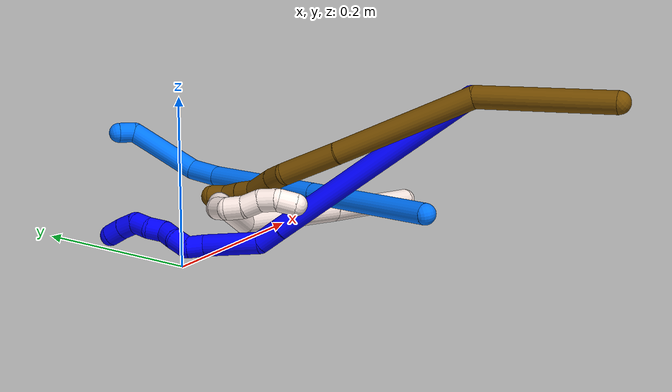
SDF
<sdf version="1.7">
 <world name="default">
  <model name="1">
   <static>0</static>
   <link name="1">
    <collision name="collision-cylinder-e_1_1_4">
     <pose>-0.068429 0.007891 -0.111738 -3.07109 -0.548385 2.89214</pose>
     <geometry><cylinder><radius>0.0125</radius><length>0.262528</length></cylinder></geometry>
     <surface>
      <friction><ode><mu>1.16</mu><mu2>1.16</mu2><slip1>0</slip1><slip2>0</slip2></ode></friction>
      <contact><ode><kp>1e+06</kp><kd>1</kd><max_vel>0</max_vel><min_depth>0.001</min_depth></ode></contact>
     </surface>
    </collision>
    <visual name="visual-cylinder-e_1_1_4">
     <pose>-0.068429 0.007891 -0.111738 -3.07109 -0.548385 2.89214</pose>
     <geometry><cylinder><radius>0.0125</radius><length>0.262528</length></cylinder></geometry>
     <material><ambient>0 0 1 1</ambient></material>
    </visual>
    <collision name="collision-cylinder-e_2_4_5">
     <pose>-0.143253 0.016708 -0.235962 -3.06757 -0.472267 2.83623</pose>
     <geometry><cylinder><radius>0.0125</radius><length>0.028117</length></cylinder></geometry>
     <surface>
      <friction><ode><mu>1.16</mu><mu2>1.16</mu2><slip1>0</slip1><slip2>0</slip2></ode></friction>
      <contact><ode><kp>1e+06</kp><kd>1</kd><max_vel>0</max_vel><min_depth>0.001</min_depth></ode></contact>
     </surface>
    </collision>
    <visual name="visual-cylinder-e_2_4_5">
     <pose>-0.143253 0.016708 -0.235962 -3.06757 -0.472267 2.83623</pose>
     <geometry><cylinder><radius>0.0125</radius><length>0.028117</length></cylinder></geometry>
     <material><ambient>0 0 1 1</ambient></material>
    </visual>
    <collision name="collision-cylinder-e_3_5_6">
     <pose>-0.16231 0.036611 -0.273787 -2.49877 -0.380443 1.04863</pose>
     <geometry><cylinder><radius>0.0125</radius><length>0.068192</length></cylinder></geometry>
     <surface>
      <friction><ode><mu>1.16</mu><mu2>1.16</mu2><slip1>0</slip1><slip2>0</slip2></ode></friction>
      <contact><ode><kp>1e+06</kp><kd>1</kd><max_vel>0</max_vel><min_depth>0.001</min_depth></ode></contact>
     </surface>
    </collision>
    <visual name="visual-cylinder-e_3_5_6">
     <pose>-0.16231 0.036611 -0.273787 -2.49877 -0.380443 1.04863</pose>
     <geometry><cylinder><radius>0.0125</radius><length>0.068192</length></cylinder></geometry>
     <material><ambient>0 0 1 1</ambient></material>
    </visual>
    <collision name="collision-cylinder-e_4_6_7">
     <pose>-0.181521 0.060637 -0.305167 -2.44547 -0.69398 1.56745</pose>
     <geometry><cylinder><radius>0.0125</radius><length>0.020483</length></cylinder></geometry>
     <surface>
      <friction><ode><mu>1.16</mu><mu2>1.16</mu2><slip1>0</slip1><slip2>0</slip2></ode></friction>
      <contact><ode><kp>1e+06</kp><kd>1</kd><max_vel>0</max_vel><min_depth>0.001</min_depth></ode></contact>
     </surface>
    </collision>
    <visual name="visual-cylinder-e_4_6_7">
     <pose>-0.181521 0.060637 -0.305167 -2.44547 -0.69398 1.56745</pose>
     <geometry><cylinder><radius>0.0125</radius><length>0.020483</length></cylinder></geometry>
     <material><ambient>0 0 1 1</ambient></material>
    </visual>
    <collision name="collision-cylinder-e_5_7_8">
     <pose>-0.188179 0.074741 -0.315918 -2.05045 -0.010497 0.017292</pose>
     <geometry><cylinder><radius>0.0125</radius><length>0.020416</length></cylinder></geometry>
     <surface>
      <friction><ode><mu>1.16</mu><mu2>1.16</mu2><slip1>0</slip1><slip2>0</slip2></ode></friction>
      <contact><ode><kp>1e+06</kp><kd>1</kd><max_vel>0</max_vel><min_depth>0.001</min_depth></ode></contact>
     </surface>
    </collision>
    <visual name="visual-cylinder-e_5_7_8">
     <pose>-0.188179 0.074741 -0.315918 -2.05045 -0.010497 0.017292</pose>
     <geometry><cylinder><radius>0.0125</radius><length>0.020416</length></cylinder></geometry>
     <material><ambient>0 0 1 1</ambient></material>
    </visual>
    <collision name="collision-cylinder-e_6_8_9">
     <pose>-0.185958 0.091647 -0.326541 -2.21625 0.232559 -0.46008</pose>
     <geometry><cylinder><radius>0.0125</radius><length>0.0202</length></cylinder></geometry>
     <surface>
      <friction><ode><mu>1.16</mu><mu2>1.16</mu2><slip1>0</slip1><slip2>0</slip2></ode></friction>
      <contact><ode><kp>1e+06</kp><kd>1</kd><max_vel>0</max_vel><min_depth>0.001</min_depth></ode></contact>
     </surface>
    </collision>
    <visual name="visual-cylinder-e_6_8_9">
     <pose>-0.185958 0.091647 -0.326541 -2.21625 0.232559 -0.46008</pose>
     <geometry><cylinder><radius>0.0125</radius><length>0.0202</length></cylinder></geometry>
     <material><ambient>0 0 1 1</ambient></material>
    </visual>
    <collision name="collision-cylinder-e_7_9_10">
     <pose>-0.18765 0.107025 -0.337726 -2.18189 -0.412294 0.764156</pose>
     <geometry><cylinder><radius>0.0125</radius><length>0.020062</length></cylinder></geometry>
     <surface>
      <friction><ode><mu>1.16</mu><mu2>1.16</mu2><slip1>0</slip1><slip2>0</slip2></ode></friction>
      <contact><ode><kp>1e+06</kp><kd>1</kd><max_vel>0</max_vel><min_depth>0.001</min_depth></ode></contact>
     </surface>
    </collision>
    <visual name="visual-cylinder-e_7_9_10">
     <pose>-0.18765 0.107025 -0.337726 -2.18189 -0.412294 0.764156</pose>
     <geometry><cylinder><radius>0.0125</radius><length>0.020062</length></cylinder></geometry>
     <material><ambient>0 0 1 1</ambient></material>
    </visual>
    <collision name="collision-cylinder-e_8_10_11">
     <pose>-0.192232 0.122405 -0.349167 -2.23659 -0.056268 0.115645</pose>
     <geometry><cylinder><radius>0.0125</radius><length>0.020002</length></cylinder></geometry>
     <surface>
      <friction><ode><mu>1.16</mu><mu2>1.16</mu2><slip1>0</slip1><slip2>0</slip2></ode></friction>
      <contact><ode><kp>1e+06</kp><kd>1</kd><max_vel>0</max_vel><min_depth>0.001</min_depth></ode></contact>
     </surface>
    </collision>
    <visual name="visual-cylinder-e_8_10_11">
     <pose>-0.192232 0.122405 -0.349167 -2.23659 -0.056268 0.115645</pose>
     <geometry><cylinder><radius>0.0125</radius><length>0.020002</length></cylinder></geometry>
     <material><ambient>0 0 1 1</ambient></material>
    </visual>
    <collision name="collision-cylinder-e_9_11_12">
     <pose>-0.19549 0.133111 -0.364532 -2.84078 -0.272904 1.47224</pose>
     <geometry><cylinder><radius>0.0125</radius><length>0.02</length></cylinder></geometry>
     <surface>
      <friction><ode><mu>1.16</mu><mu2>1.16</mu2><slip1>0</slip1><slip2>0</slip2></ode></friction>
      <contact><ode><kp>1e+06</kp><kd>1</kd><max_vel>0</max_vel><min_depth>0.001</min_depth></ode></contact>
     </surface>
    </collision>
    <visual name="visual-cylinder-e_9_11_12">
     <pose>-0.19549 0.133111 -0.364532 -2.84078 -0.272904 1.47224</pose>
     <geometry><cylinder><radius>0.0125</radius><length>0.02</length></cylinder></geometry>
     <material><ambient>0 0 1 1</ambient></material>
    </visual>
    <collision name="collision-cylinder-e_10_12_2">
     <pose>-0.201109 0.137843 -0.383107 -2.9439 -0.296672 1.96979</pose>
     <geometry><cylinder><radius>0.0125</radius><length>0.02</length></cylinder></geometry>
     <surface>
      <friction><ode><mu>1.16</mu><mu2>1.16</mu2><slip1>0</slip1><slip2>0</slip2></ode></friction>
      <contact><ode><kp>1e+06</kp><kd>1</kd><max_vel>0</max_vel><min_depth>0.001</min_depth></ode></contact>
     </surface>
    </collision>
    <visual name="visual-cylinder-e_10_12_2">
     <pose>-0.201109 0.137843 -0.383107 -2.9439 -0.296672 1.96979</pose>
     <geometry><cylinder><radius>0.0125</radius><length>0.02</length></cylinder></geometry>
     <material><ambient>0 0 1 1</ambient></material>
    </visual>
    <collision name="collision-sphere-2">
     <pose>-0.204032 0.139721 -0.392484 0 -0 0</pose>
     <geometry><sphere><radius>0.0125</radius></sphere></geometry>
     <surface>
      <friction><ode><mu>1.16</mu><mu2>1.16</mu2><slip1>0</slip1><slip2>0</slip2></ode></friction>
      <contact><ode><kp>1e+06</kp><kd>1</kd><max_vel>0</max_vel><min_depth>0.001</min_depth></ode></contact>
     </surface>
    </collision>
    <visual name="visual-sphere-2">
     <pose>-0.204032 0.139721 -0.392484 0 -0 0</pose>
     <geometry><sphere><radius>0.0125</radius></sphere></geometry>
     <material><ambient>0 0 1 1</ambient></material>
    </visual>
    <collision name="collision-sphere-12">
     <pose>-0.198185 0.135964 -0.37373 0 -0 0</pose>
     <geometry><sphere><radius>0.0125</radius></sphere></geometry>
     <surface>
      <friction><ode><mu>1.16</mu><mu2>1.16</mu2><slip1>0</slip1><slip2>0</slip2></ode></friction>
      <contact><ode><kp>1e+06</kp><kd>1</kd><max_vel>0</max_vel><min_depth>0.001</min_depth></ode></contact>
     </surface>
    </collision>
    <visual name="visual-sphere-12">
     <pose>-0.198185 0.135964 -0.37373 0 -0 0</pose>
     <geometry><sphere><radius>0.0125</radius></sphere></geometry>
     <material><ambient>0 0 1 1</ambient></material>
    </visual>
    <collision name="collision-sphere-11">
     <pose>-0.192794 0.130258 -0.355335 0 -0 0</pose>
     <geometry><sphere><radius>0.0125</radius></sphere></geometry>
     <surface>
      <friction><ode><mu>1.16</mu><mu2>1.16</mu2><slip1>0</slip1><slip2>0</slip2></ode></friction>
      <contact><ode><kp>1e+06</kp><kd>1</kd><max_vel>0</max_vel><min_depth>0.001</min_depth></ode></contact>
     </surface>
    </collision>
    <visual name="visual-sphere-11">
     <pose>-0.192794 0.130258 -0.355335 0 -0 0</pose>
     <geometry><sphere><radius>0.0125</radius></sphere></geometry>
     <material><ambient>0 0 1 1</ambient></material>
    </visual>
    <collision name="collision-sphere-10">
     <pose>-0.19167 0.114552 -0.342999 0 -0 0</pose>
     <geometry><sphere><radius>0.0125</radius></sphere></geometry>
     <surface>
      <friction><ode><mu>1.16</mu><mu2>1.16</mu2><slip1>0</slip1><slip2>0</slip2></ode></friction>
      <contact><ode><kp>1e+06</kp><kd>1</kd><max_vel>0</max_vel><min_depth>0.001</min_depth></ode></contact>
     </surface>
    </collision>
    <visual name="visual-sphere-10">
     <pose>-0.19167 0.114552 -0.342999 0 -0 0</pose>
     <geometry><sphere><radius>0.0125</radius></sphere></geometry>
     <material><ambient>0 0 1 1</ambient></material>
    </visual>
    <collision name="collision-sphere-9">
     <pose>-0.183631 0.099498 -0.332453 0 -0 0</pose>
     <geometry><sphere><radius>0.0125</radius></sphere></geometry>
     <surface>
      <friction><ode><mu>1.16</mu><mu2>1.16</mu2><slip1>0</slip1><slip2>0</slip2></ode></friction>
      <contact><ode><kp>1e+06</kp><kd>1</kd><max_vel>0</max_vel><min_depth>0.001</min_depth></ode></contact>
     </surface>
    </collision>
    <visual name="visual-sphere-9">
     <pose>-0.183631 0.099498 -0.332453 0 -0 0</pose>
     <geometry><sphere><radius>0.0125</radius></sphere></geometry>
     <material><ambient>0 0 1 1</ambient></material>
    </visual>
    <collision name="collision-sphere-4">
     <pose>-0.136858 0.015782 -0.223476 0 -0 0</pose>
     <geometry><sphere><radius>0.0125</radius></sphere></geometry>
     <surface>
      <friction><ode><mu>1.16</mu><mu2>1.16</mu2><slip1>0</slip1><slip2>0</slip2></ode></friction>
      <contact><ode><kp>1e+06</kp><kd>1</kd><max_vel>0</max_vel><min_depth>0.001</min_depth></ode></contact>
     </surface>
    </collision>
    <visual name="visual-sphere-4">
     <pose>-0.136858 0.015782 -0.223476 0 -0 0</pose>
     <geometry><sphere><radius>0.0125</radius></sphere></geometry>
     <material><ambient>0 0 1 1</ambient></material>
    </visual>
    <collision name="collision-sphere-1">
     <geometry><sphere><radius>0.0125</radius></sphere></geometry>
     <surface>
      <friction><ode><mu>1.16</mu><mu2>1.16</mu2><slip1>0</slip1><slip2>0</slip2></ode></friction>
      <contact><ode><kp>1e+06</kp><kd>1</kd><max_vel>0</max_vel><min_depth>0.001</min_depth></ode></contact>
     </surface>
    </collision>
    <visual name="visual-sphere-1">
     <geometry><sphere><radius>0.0125</radius></sphere></geometry>
     <material><ambient>0 0 1 1</ambient></material>
    </visual>
    <collision name="collision-sphere-8">
     <pose>-0.188286 0.083797 -0.320629 0 -0 0</pose>
     <geometry><sphere><radius>0.0125</radius></sphere></geometry>
     <surface>
      <friction><ode><mu>1.16</mu><mu2>1.16</mu2><slip1>0</slip1><slip2>0</slip2></ode></friction>
      <contact><ode><kp>1e+06</kp><kd>1</kd><max_vel>0</max_vel><min_depth>0.001</min_depth></ode></contact>
     </surface>
    </collision>
    <visual name="visual-sphere-8">
     <pose>-0.188286 0.083797 -0.320629 0 -0 0</pose>
     <geometry><sphere><radius>0.0125</radius></sphere></geometry>
     <material><ambient>0 0 1 1</ambient></material>
    </visual>
    <collision name="collision-sphere-5">
     <pose>-0.149649 0.017633 -0.248447 0 -0 0</pose>
     <geometry><sphere><radius>0.0125</radius></sphere></geometry>
     <surface>
      <friction><ode><mu>1.16</mu><mu2>1.16</mu2><slip1>0</slip1><slip2>0</slip2></ode></friction>
      <contact><ode><kp>1e+06</kp><kd>1</kd><max_vel>0</max_vel><min_depth>0.001</min_depth></ode></contact>
     </surface>
    </collision>
    <visual name="visual-sphere-5">
     <pose>-0.149649 0.017633 -0.248447 0 -0 0</pose>
     <geometry><sphere><radius>0.0125</radius></sphere></geometry>
     <material><ambient>0 0 1 1</ambient></material>
    </visual>
    <collision name="collision-sphere-6">
     <pose>-0.174971 0.055589 -0.299126 0 -0 0</pose>
     <geometry><sphere><radius>0.0125</radius></sphere></geometry>
     <surface>
      <friction><ode><mu>1.16</mu><mu2>1.16</mu2><slip1>0</slip1><slip2>0</slip2></ode></friction>
      <contact><ode><kp>1e+06</kp><kd>1</kd><max_vel>0</max_vel><min_depth>0.001</min_depth></ode></contact>
     </surface>
    </collision>
    <visual name="visual-sphere-6">
     <pose>-0.174971 0.055589 -0.299126 0 -0 0</pose>
     <geometry><sphere><radius>0.0125</radius></sphere></geometry>
     <material><ambient>0 0 1 1</ambient></material>
    </visual>
    <collision name="collision-sphere-7">
     <pose>-0.188072 0.065686 -0.311208 0 -0 0</pose>
     <geometry><sphere><radius>0.0125</radius></sphere></geometry>
     <surface>
      <friction><ode><mu>1.16</mu><mu2>1.16</mu2><slip1>0</slip1><slip2>0</slip2></ode></friction>
      <contact><ode><kp>1e+06</kp><kd>1</kd><max_vel>0</max_vel><min_depth>0.001</min_depth></ode></contact>
     </surface>
    </collision>
    <visual name="visual-sphere-7">
     <pose>-0.188072 0.065686 -0.311208 0 -0 0</pose>
     <geometry><sphere><radius>0.0125</radius></sphere></geometry>
     <material><ambient>0 0 1 1</ambient></material>
    </visual>
    <inertial>
     <pose>-0.119837 0.039343 -0.205296 0 -0 0</pose>
     <mass>0.5</mass>
     <inertia>
      <ixx>-0.000907</ixx>
      <ixy>0</ixy>
      <ixz>0</ixz>
      <iyy>0.001836</iyy>
      <iyz>0</iyz>
      <izz>0.000661</izz>
     </inertia>
    </inertial>
   </link>
   <pose>0.138408 -0.294429 0.213442 0.801152 -0.105021 -0.109209</pose>
  </model>
  <model name="11">
   <static>0</static>
   <link name="11">
    <collision name="collision-cylinder-e_1_1_4">
     <pose>-0.066112 -0.02285 0.016914 0.933591 -1.16469 -0.640845</pose>
     <geometry><cylinder><radius>0.0125</radius><length>0.143931</length></cylinder></geometry>
     <surface>
      <friction><ode><mu>1.16</mu><mu2>1.16</mu2><slip1>0</slip1><slip2>0</slip2></ode></friction>
      <contact><ode><kp>1e+06</kp><kd>1</kd><max_vel>0</max_vel><min_depth>0.001</min_depth></ode></contact>
     </surface>
    </collision>
    <visual name="visual-cylinder-e_1_1_4">
     <pose>-0.066112 -0.02285 0.016914 0.933591 -1.16469 -0.640845</pose>
     <geometry><cylinder><radius>0.0125</radius><length>0.143931</length></cylinder></geometry>
     <material><ambient>1 0.933333 0.909804 1</ambient></material>
    </visual>
    <collision name="collision-cylinder-e_2_4_5">
     <pose>-0.207039 -0.069991 0.056664 0.816233 -1.15158 -0.547306</pose>
     <geometry><cylinder><radius>0.0125</radius><length>0.163813</length></cylinder></geometry>
     <surface>
      <friction><ode><mu>1.16</mu><mu2>1.16</mu2><slip1>0</slip1><slip2>0</slip2></ode></friction>
      <contact><ode><kp>1e+06</kp><kd>1</kd><max_vel>0</max_vel><min_depth>0.001</min_depth></ode></contact>
     </surface>
    </collision>
    <visual name="visual-cylinder-e_2_4_5">
     <pose>-0.207039 -0.069991 0.056664 0.816233 -1.15158 -0.547306</pose>
     <geometry><cylinder><radius>0.0125</radius><length>0.163813</length></cylinder></geometry>
     <material><ambient>1 0.933333 0.909804 1</ambient></material>
    </visual>
    <collision name="collision-cylinder-e_3_5_6">
     <pose>-0.303362 -0.091957 0.094076 -0.158138 -0.969393 0.0834</pose>
     <geometry><cylinder><radius>0.0125</radius><length>0.052171</length></cylinder></geometry>
     <surface>
      <friction><ode><mu>1.16</mu><mu2>1.16</mu2><slip1>0</slip1><slip2>0</slip2></ode></friction>
      <contact><ode><kp>1e+06</kp><kd>1</kd><max_vel>0</max_vel><min_depth>0.001</min_depth></ode></contact>
     </surface>
    </collision>
    <visual name="visual-cylinder-e_3_5_6">
     <pose>-0.303362 -0.091957 0.094076 -0.158138 -0.969393 0.0834</pose>
     <geometry><cylinder><radius>0.0125</radius><length>0.052171</length></cylinder></geometry>
     <material><ambient>1 0.933333 0.909804 1</ambient></material>
    </visual>
    <collision name="collision-cylinder-e_4_6_7">
     <pose>-0.33274 -0.089739 0.114843 0.017259 -0.904092 -0.008381</pose>
     <geometry><cylinder><radius>0.0125</radius><length>0.020028</length></cylinder></geometry>
     <surface>
      <friction><ode><mu>1.16</mu><mu2>1.16</mu2><slip1>0</slip1><slip2>0</slip2></ode></friction>
      <contact><ode><kp>1e+06</kp><kd>1</kd><max_vel>0</max_vel><min_depth>0.001</min_depth></ode></contact>
     </surface>
    </collision>
    <visual name="visual-cylinder-e_4_6_7">
     <pose>-0.33274 -0.089739 0.114843 0.017259 -0.904092 -0.008381</pose>
     <geometry><cylinder><radius>0.0125</radius><length>0.020028</length></cylinder></geometry>
     <material><ambient>1 0.933333 0.909804 1</ambient></material>
    </visual>
    <collision name="collision-cylinder-e_5_7_8">
     <pose>-0.345832 -0.094733 0.128054 0.608224 -0.548205 -0.176039</pose>
     <geometry><cylinder><radius>0.0125</radius><length>0.020042</length></cylinder></geometry>
     <surface>
      <friction><ode><mu>1.16</mu><mu2>1.16</mu2><slip1>0</slip1><slip2>0</slip2></ode></friction>
      <contact><ode><kp>1e+06</kp><kd>1</kd><max_vel>0</max_vel><min_depth>0.001</min_depth></ode></contact>
     </surface>
    </collision>
    <visual name="visual-cylinder-e_5_7_8">
     <pose>-0.345832 -0.094733 0.128054 0.608224 -0.548205 -0.176039</pose>
     <geometry><cylinder><radius>0.0125</radius><length>0.020042</length></cylinder></geometry>
     <material><ambient>1 0.933333 0.909804 1</ambient></material>
    </visual>
    <collision name="collision-cylinder-e_6_8_9">
     <pose>-0.350838 -0.101608 0.144872 0.200117 0.021719 0.00218</pose>
     <geometry><cylinder><radius>0.0125</radius><length>0.020001</length></cylinder></geometry>
     <surface>
      <friction><ode><mu>1.16</mu><mu2>1.16</mu2><slip1>0</slip1><slip2>0</slip2></ode></friction>
      <contact><ode><kp>1e+06</kp><kd>1</kd><max_vel>0</max_vel><min_depth>0.001</min_depth></ode></contact>
     </surface>
    </collision>
    <visual name="visual-cylinder-e_6_8_9">
     <pose>-0.350838 -0.101608 0.144872 0.200117 0.021719 0.00218</pose>
     <geometry><cylinder><radius>0.0125</radius><length>0.020001</length></cylinder></geometry>
     <material><ambient>1 0.933333 0.909804 1</ambient></material>
    </visual>
    <collision name="collision-cylinder-e_7_9_10">
     <pose>-0.344804 -0.103008 0.162787 -0.072256 0.620536 -0.023176</pose>
     <geometry><cylinder><radius>0.0125</radius><length>0.020007</length></cylinder></geometry>
     <surface>
      <friction><ode><mu>1.16</mu><mu2>1.16</mu2><slip1>0</slip1><slip2>0</slip2></ode></friction>
      <contact><ode><kp>1e+06</kp><kd>1</kd><max_vel>0</max_vel><min_depth>0.001</min_depth></ode></contact>
     </surface>
    </collision>
    <visual name="visual-cylinder-e_7_9_10">
     <pose>-0.344804 -0.103008 0.162787 -0.072256 0.620536 -0.023176</pose>
     <geometry><cylinder><radius>0.0125</radius><length>0.020007</length></cylinder></geometry>
     <material><ambient>1 0.933333 0.909804 1</ambient></material>
    </visual>
    <collision name="collision-cylinder-e_8_10_11">
     <pose>-0.333777 -0.099164 0.178795 -0.391404 0.548034 -0.11133</pose>
     <geometry><cylinder><radius>0.0125</radius><length>0.020002</length></cylinder></geometry>
     <surface>
      <friction><ode><mu>1.16</mu><mu2>1.16</mu2><slip1>0</slip1><slip2>0</slip2></ode></friction>
      <contact><ode><kp>1e+06</kp><kd>1</kd><max_vel>0</max_vel><min_depth>0.001</min_depth></ode></contact>
     </surface>
    </collision>
    <visual name="visual-cylinder-e_8_10_11">
     <pose>-0.333777 -0.099164 0.178795 -0.391404 0.548034 -0.11133</pose>
     <geometry><cylinder><radius>0.0125</radius><length>0.020002</length></cylinder></geometry>
     <material><ambient>1 0.933333 0.909804 1</ambient></material>
    </visual>
    <collision name="collision-cylinder-e_9_11_12">
     <pose>-0.322913 -0.096151 0.194934 0.029572 0.600675 0.009159</pose>
     <geometry><cylinder><radius>0.0125</radius><length>0.020004</length></cylinder></geometry>
     <surface>
      <friction><ode><mu>1.16</mu><mu2>1.16</mu2><slip1>0</slip1><slip2>0</slip2></ode></friction>
      <contact><ode><kp>1e+06</kp><kd>1</kd><max_vel>0</max_vel><min_depth>0.001</min_depth></ode></contact>
     </surface>
    </collision>
    <visual name="visual-cylinder-e_9_11_12">
     <pose>-0.322913 -0.096151 0.194934 0.029572 0.600675 0.009159</pose>
     <geometry><cylinder><radius>0.0125</radius><length>0.020004</length></cylinder></geometry>
     <material><ambient>1 0.933333 0.909804 1</ambient></material>
    </visual>
    <collision name="collision-cylinder-e_10_12_2">
     <pose>-0.308467 -0.098187 0.207595 0.385572 1.07431 0.231485</pose>
     <geometry><cylinder><radius>0.0125</radius><length>0.02</length></cylinder></geometry>
     <surface>
      <friction><ode><mu>1.16</mu><mu2>1.16</mu2><slip1>0</slip1><slip2>0</slip2></ode></friction>
      <contact><ode><kp>1e+06</kp><kd>1</kd><max_vel>0</max_vel><min_depth>0.001</min_depth></ode></contact>
     </surface>
    </collision>
    <visual name="visual-cylinder-e_10_12_2">
     <pose>-0.308467 -0.098187 0.207595 0.385572 1.07431 0.231485</pose>
     <geometry><cylinder><radius>0.0125</radius><length>0.02</length></cylinder></geometry>
     <material><ambient>1 0.933333 0.909804 1</ambient></material>
    </visual>
    <collision name="collision-sphere-2">
     <pose>-0.299674 -0.099978 0.212008 0 -0 0</pose>
     <geometry><sphere><radius>0.0125</radius></sphere></geometry>
     <surface>
      <friction><ode><mu>1.16</mu><mu2>1.16</mu2><slip1>0</slip1><slip2>0</slip2></ode></friction>
      <contact><ode><kp>1e+06</kp><kd>1</kd><max_vel>0</max_vel><min_depth>0.001</min_depth></ode></contact>
     </surface>
    </collision>
    <visual name="visual-sphere-2">
     <pose>-0.299674 -0.099978 0.212008 0 -0 0</pose>
     <geometry><sphere><radius>0.0125</radius></sphere></geometry>
     <material><ambient>1 0.933333 0.909804 1</ambient></material>
    </visual>
    <collision name="collision-sphere-12">
     <pose>-0.31726 -0.096395 0.203181 0 -0 0</pose>
     <geometry><sphere><radius>0.0125</radius></sphere></geometry>
     <surface>
      <friction><ode><mu>1.16</mu><mu2>1.16</mu2><slip1>0</slip1><slip2>0</slip2></ode></friction>
      <contact><ode><kp>1e+06</kp><kd>1</kd><max_vel>0</max_vel><min_depth>0.001</min_depth></ode></contact>
     </surface>
    </collision>
    <visual name="visual-sphere-12">
     <pose>-0.31726 -0.096395 0.203181 0 -0 0</pose>
     <geometry><sphere><radius>0.0125</radius></sphere></geometry>
     <material><ambient>1 0.933333 0.909804 1</ambient></material>
    </visual>
    <collision name="collision-sphere-11">
     <pose>-0.328566 -0.095907 0.186686 0 -0 0</pose>
     <geometry><sphere><radius>0.0125</radius></sphere></geometry>
     <surface>
      <friction><ode><mu>1.16</mu><mu2>1.16</mu2><slip1>0</slip1><slip2>0</slip2></ode></friction>
      <contact><ode><kp>1e+06</kp><kd>1</kd><max_vel>0</max_vel><min_depth>0.001</min_depth></ode></contact>
     </surface>
    </collision>
    <visual name="visual-sphere-11">
     <pose>-0.328566 -0.095907 0.186686 0 -0 0</pose>
     <geometry><sphere><radius>0.0125</radius></sphere></geometry>
     <material><ambient>1 0.933333 0.909804 1</ambient></material>
    </visual>
    <collision name="collision-sphere-10">
     <pose>-0.338987 -0.10242 0.170904 0 -0 0</pose>
     <geometry><sphere><radius>0.0125</radius></sphere></geometry>
     <surface>
      <friction><ode><mu>1.16</mu><mu2>1.16</mu2><slip1>0</slip1><slip2>0</slip2></ode></friction>
      <contact><ode><kp>1e+06</kp><kd>1</kd><max_vel>0</max_vel><min_depth>0.001</min_depth></ode></contact>
     </surface>
    </collision>
    <visual name="visual-sphere-10">
     <pose>-0.338987 -0.10242 0.170904 0 -0 0</pose>
     <geometry><sphere><radius>0.0125</radius></sphere></geometry>
     <material><ambient>1 0.933333 0.909804 1</ambient></material>
    </visual>
    <collision name="collision-sphere-9">
     <pose>-0.350621 -0.103595 0.15467 0 -0 0</pose>
     <geometry><sphere><radius>0.0125</radius></sphere></geometry>
     <surface>
      <friction><ode><mu>1.16</mu><mu2>1.16</mu2><slip1>0</slip1><slip2>0</slip2></ode></friction>
      <contact><ode><kp>1e+06</kp><kd>1</kd><max_vel>0</max_vel><min_depth>0.001</min_depth></ode></contact>
     </surface>
    </collision>
    <visual name="visual-sphere-9">
     <pose>-0.350621 -0.103595 0.15467 0 -0 0</pose>
     <geometry><sphere><radius>0.0125</radius></sphere></geometry>
     <material><ambient>1 0.933333 0.909804 1</ambient></material>
    </visual>
    <collision name="collision-sphere-4">
     <pose>-0.132225 -0.0457 0.033828 0 -0 0</pose>
     <geometry><sphere><radius>0.0125</radius></sphere></geometry>
     <surface>
      <friction><ode><mu>1.16</mu><mu2>1.16</mu2><slip1>0</slip1><slip2>0</slip2></ode></friction>
      <contact><ode><kp>1e+06</kp><kd>1</kd><max_vel>0</max_vel><min_depth>0.001</min_depth></ode></contact>
     </surface>
    </collision>
    <visual name="visual-sphere-4">
     <pose>-0.132225 -0.0457 0.033828 0 -0 0</pose>
     <geometry><sphere><radius>0.0125</radius></sphere></geometry>
     <material><ambient>1 0.933333 0.909804 1</ambient></material>
    </visual>
    <collision name="collision-sphere-1">
     <geometry><sphere><radius>0.0125</radius></sphere></geometry>
     <surface>
      <friction><ode><mu>1.16</mu><mu2>1.16</mu2><slip1>0</slip1><slip2>0</slip2></ode></friction>
      <contact><ode><kp>1e+06</kp><kd>1</kd><max_vel>0</max_vel><min_depth>0.001</min_depth></ode></contact>
     </surface>
    </collision>
    <visual name="visual-sphere-1">
     <geometry><sphere><radius>0.0125</radius></sphere></geometry>
     <material><ambient>1 0.933333 0.909804 1</ambient></material>
    </visual>
    <collision name="collision-sphere-8">
     <pose>-0.351055 -0.09962 0.135073 0 -0 0</pose>
     <geometry><sphere><radius>0.0125</radius></sphere></geometry>
     <surface>
      <friction><ode><mu>1.16</mu><mu2>1.16</mu2><slip1>0</slip1><slip2>0</slip2></ode></friction>
      <contact><ode><kp>1e+06</kp><kd>1</kd><max_vel>0</max_vel><min_depth>0.001</min_depth></ode></contact>
     </surface>
    </collision>
    <visual name="visual-sphere-8">
     <pose>-0.351055 -0.09962 0.135073 0 -0 0</pose>
     <geometry><sphere><radius>0.0125</radius></sphere></geometry>
     <material><ambient>1 0.933333 0.909804 1</ambient></material>
    </visual>
    <collision name="collision-sphere-5">
     <pose>-0.281853 -0.094281 0.079501 0 -0 0</pose>
     <geometry><sphere><radius>0.0125</radius></sphere></geometry>
     <surface>
      <friction><ode><mu>1.16</mu><mu2>1.16</mu2><slip1>0</slip1><slip2>0</slip2></ode></friction>
      <contact><ode><kp>1e+06</kp><kd>1</kd><max_vel>0</max_vel><min_depth>0.001</min_depth></ode></contact>
     </surface>
    </collision>
    <visual name="visual-sphere-5">
     <pose>-0.281853 -0.094281 0.079501 0 -0 0</pose>
     <geometry><sphere><radius>0.0125</radius></sphere></geometry>
     <material><ambient>1 0.933333 0.909804 1</ambient></material>
    </visual>
    <collision name="collision-sphere-6">
     <pose>-0.32487 -0.089633 0.108652 0 -0 0</pose>
     <geometry><sphere><radius>0.0125</radius></sphere></geometry>
     <surface>
      <friction><ode><mu>1.16</mu><mu2>1.16</mu2><slip1>0</slip1><slip2>0</slip2></ode></friction>
      <contact><ode><kp>1e+06</kp><kd>1</kd><max_vel>0</max_vel><min_depth>0.001</min_depth></ode></contact>
     </surface>
    </collision>
    <visual name="visual-sphere-6">
     <pose>-0.32487 -0.089633 0.108652 0 -0 0</pose>
     <geometry><sphere><radius>0.0125</radius></sphere></geometry>
     <material><ambient>1 0.933333 0.909804 1</ambient></material>
    </visual>
    <collision name="collision-sphere-7">
     <pose>-0.34061 -0.089846 0.121035 0 -0 0</pose>
     <geometry><sphere><radius>0.0125</radius></sphere></geometry>
     <surface>
      <friction><ode><mu>1.16</mu><mu2>1.16</mu2><slip1>0</slip1><slip2>0</slip2></ode></friction>
      <contact><ode><kp>1e+06</kp><kd>1</kd><max_vel>0</max_vel><min_depth>0.001</min_depth></ode></contact>
     </surface>
    </collision>
    <visual name="visual-sphere-7">
     <pose>-0.34061 -0.089846 0.121035 0 -0 0</pose>
     <geometry><sphere><radius>0.0125</radius></sphere></geometry>
     <material><ambient>1 0.933333 0.909804 1</ambient></material>
    </visual>
    <inertial>
     <pose>-0.212148 -0.066423 0.078547 0 -0 0</pose>
     <mass>0.5</mass>
     <inertia>
      <ixx>6.4e-05</ixx>
      <ixy>0</ixy>
      <ixz>0</ixz>
      <iyy>0.000458</iyy>
      <iyz>0</iyz>
      <izz>0.000791</izz>
     </inertia>
    </inertial>
   </link>
   <pose>0.337215 -0.092223 0.012537 1.12914 0.331411 -0.468067</pose>
  </model>
  <model name="12">
   <static>0</static>
   <link name="12">
    <collision name="collision-cylinder-e_1_1_4">
     <pose>-0.023125 0.044342 -0.059171 -2.49848 -0.303114 0.859773</pose>
     <geometry><cylinder><radius>0.0125</radius><length>0.154947</length></cylinder></geometry>
     <surface>
      <friction><ode><mu>1.16</mu><mu2>1.16</mu2><slip1>0</slip1><slip2>0</slip2></ode></friction>
      <contact><ode><kp>1e+06</kp><kd>1</kd><max_vel>0</max_vel><min_depth>0.001</min_depth></ode></contact>
     </surface>
    </collision>
    <visual name="visual-cylinder-e_1_1_4">
     <pose>-0.023125 0.044342 -0.059171 -2.49848 -0.303114 0.859773</pose>
     <geometry><cylinder><radius>0.0125</radius><length>0.154947</length></cylinder></geometry>
     <material><ambient>0.466667 0.301961 0 1</ambient></material>
    </visual>
    <collision name="collision-cylinder-e_2_4_5">
     <pose>-0.066165 0.103665 -0.195515 -2.94985 -0.2481 1.82768</pose>
     <geometry><cylinder><radius>0.0125</radius><length>0.162194</length></cylinder></geometry>
     <surface>
      <friction><ode><mu>1.16</mu><mu2>1.16</mu2><slip1>0</slip1><slip2>0</slip2></ode></friction>
      <contact><ode><kp>1e+06</kp><kd>1</kd><max_vel>0</max_vel><min_depth>0.001</min_depth></ode></contact>
     </surface>
    </collision>
    <visual name="visual-cylinder-e_2_4_5">
     <pose>-0.066165 0.103665 -0.195515 -2.94985 -0.2481 1.82768</pose>
     <geometry><cylinder><radius>0.0125</radius><length>0.162194</length></cylinder></geometry>
     <material><ambient>0.466667 0.301961 0 1</ambient></material>
    </visual>
    <collision name="collision-cylinder-e_3_5_6">
     <pose>-0.091319 0.127245 -0.304463 -2.87731 -0.157834 1.07342</pose>
     <geometry><cylinder><radius>0.0125</radius><length>0.066664</length></cylinder></geometry>
     <surface>
      <friction><ode><mu>1.16</mu><mu2>1.16</mu2><slip1>0</slip1><slip2>0</slip2></ode></friction>
      <contact><ode><kp>1e+06</kp><kd>1</kd><max_vel>0</max_vel><min_depth>0.001</min_depth></ode></contact>
     </surface>
    </collision>
    <visual name="visual-cylinder-e_3_5_6">
     <pose>-0.091319 0.127245 -0.304463 -2.87731 -0.157834 1.07342</pose>
     <geometry><cylinder><radius>0.0125</radius><length>0.066664</length></cylinder></geometry>
     <material><ambient>0.466667 0.301961 0 1</ambient></material>
    </visual>
    <collision name="collision-cylinder-e_4_6_7">
     <pose>-0.094022 0.140622 -0.345771 -2.67696 0.233484 -0.920389</pose>
     <geometry><cylinder><radius>0.0125</radius><length>0.021922</length></cylinder></geometry>
     <surface>
      <friction><ode><mu>1.16</mu><mu2>1.16</mu2><slip1>0</slip1><slip2>0</slip2></ode></friction>
      <contact><ode><kp>1e+06</kp><kd>1</kd><max_vel>0</max_vel><min_depth>0.001</min_depth></ode></contact>
     </surface>
    </collision>
    <visual name="visual-cylinder-e_4_6_7">
     <pose>-0.094022 0.140622 -0.345771 -2.67696 0.233484 -0.920389</pose>
     <geometry><cylinder><radius>0.0125</radius><length>0.021922</length></cylinder></geometry>
     <material><ambient>0.466667 0.301961 0 1</ambient></material>
    </visual>
    <collision name="collision-cylinder-e_5_7_8">
     <pose>-0.087403 0.150557 -0.370891 -2.82213 0.243741 -1.30004</pose>
     <geometry><cylinder><radius>0.0125</radius><length>0.033835</length></cylinder></geometry>
     <surface>
      <friction><ode><mu>1.16</mu><mu2>1.16</mu2><slip1>0</slip1><slip2>0</slip2></ode></friction>
      <contact><ode><kp>1e+06</kp><kd>1</kd><max_vel>0</max_vel><min_depth>0.001</min_depth></ode></contact>
     </surface>
    </collision>
    <visual name="visual-cylinder-e_5_7_8">
     <pose>-0.087403 0.150557 -0.370891 -2.82213 0.243741 -1.30004</pose>
     <geometry><cylinder><radius>0.0125</radius><length>0.033835</length></cylinder></geometry>
     <material><ambient>0.466667 0.301961 0 1</ambient></material>
    </visual>
    <collision name="collision-cylinder-e_6_8_9">
     <pose>-0.08371 0.161127 -0.395126 -2.58225 -0.0382 0.132828</pose>
     <geometry><cylinder><radius>0.0125</radius><length>0.020422</length></cylinder></geometry>
     <surface>
      <friction><ode><mu>1.16</mu><mu2>1.16</mu2><slip1>0</slip1><slip2>0</slip2></ode></friction>
      <contact><ode><kp>1e+06</kp><kd>1</kd><max_vel>0</max_vel><min_depth>0.001</min_depth></ode></contact>
     </surface>
    </collision>
    <visual name="visual-cylinder-e_6_8_9">
     <pose>-0.08371 0.161127 -0.395126 -2.58225 -0.0382 0.132828</pose>
     <geometry><cylinder><radius>0.0125</radius><length>0.020422</length></cylinder></geometry>
     <material><ambient>0.466667 0.301961 0 1</ambient></material>
    </visual>
    <collision name="collision-cylinder-e_7_9_10">
     <pose>-0.084095 0.171283 -0.412579 -2.64757 0.000544 -0.002157</pose>
     <geometry><cylinder><radius>0.0125</radius><length>0.02</length></cylinder></geometry>
     <surface>
      <friction><ode><mu>1.16</mu><mu2>1.16</mu2><slip1>0</slip1><slip2>0</slip2></ode></friction>
      <contact><ode><kp>1e+06</kp><kd>1</kd><max_vel>0</max_vel><min_depth>0.001</min_depth></ode></contact>
     </surface>
    </collision>
    <visual name="visual-cylinder-e_7_9_10">
     <pose>-0.084095 0.171283 -0.412579 -2.64757 0.000544 -0.002157</pose>
     <geometry><cylinder><radius>0.0125</radius><length>0.02</length></cylinder></geometry>
     <material><ambient>0.466667 0.301961 0 1</ambient></material>
    </visual>
    <collision name="collision-cylinder-e_8_10_2">
     <pose>-0.086177 0.181562 -0.429454 -2.54027 -0.210118 0.655632</pose>
     <geometry><cylinder><radius>0.0125</radius><length>0.020016</length></cylinder></geometry>
     <surface>
      <friction><ode><mu>1.16</mu><mu2>1.16</mu2><slip1>0</slip1><slip2>0</slip2></ode></friction>
      <contact><ode><kp>1e+06</kp><kd>1</kd><max_vel>0</max_vel><min_depth>0.001</min_depth></ode></contact>
     </surface>
    </collision>
    <visual name="visual-cylinder-e_8_10_2">
     <pose>-0.086177 0.181562 -0.429454 -2.54027 -0.210118 0.655632</pose>
     <geometry><cylinder><radius>0.0125</radius><length>0.020016</length></cylinder></geometry>
     <material><ambient>0.466667 0.301961 0 1</ambient></material>
    </visual>
    <collision name="collision-sphere-2">
     <pose>-0.088264 0.187099 -0.437525 0 -0 0</pose>
     <geometry><sphere><radius>0.0125</radius></sphere></geometry>
     <surface>
      <friction><ode><mu>1.16</mu><mu2>1.16</mu2><slip1>0</slip1><slip2>0</slip2></ode></friction>
      <contact><ode><kp>1e+06</kp><kd>1</kd><max_vel>0</max_vel><min_depth>0.001</min_depth></ode></contact>
     </surface>
    </collision>
    <visual name="visual-sphere-2">
     <pose>-0.088264 0.187099 -0.437525 0 -0 0</pose>
     <geometry><sphere><radius>0.0125</radius></sphere></geometry>
     <material><ambient>0.466667 0.301961 0 1</ambient></material>
    </visual>
    <collision name="collision-sphere-10">
     <pose>-0.084089 0.176024 -0.421383 0 -0 0</pose>
     <geometry><sphere><radius>0.0125</radius></sphere></geometry>
     <surface>
      <friction><ode><mu>1.16</mu><mu2>1.16</mu2><slip1>0</slip1><slip2>0</slip2></ode></friction>
      <contact><ode><kp>1e+06</kp><kd>1</kd><max_vel>0</max_vel><min_depth>0.001</min_depth></ode></contact>
     </surface>
    </collision>
    <visual name="visual-sphere-10">
     <pose>-0.084089 0.176024 -0.421383 0 -0 0</pose>
     <geometry><sphere><radius>0.0125</radius></sphere></geometry>
     <material><ambient>0.466667 0.301961 0 1</ambient></material>
    </visual>
    <collision name="collision-sphere-9">
     <pose>-0.0841 0.166541 -0.403774 0 -0 0</pose>
     <geometry><sphere><radius>0.0125</radius></sphere></geometry>
     <surface>
      <friction><ode><mu>1.16</mu><mu2>1.16</mu2><slip1>0</slip1><slip2>0</slip2></ode></friction>
      <contact><ode><kp>1e+06</kp><kd>1</kd><max_vel>0</max_vel><min_depth>0.001</min_depth></ode></contact>
     </surface>
    </collision>
    <visual name="visual-sphere-9">
     <pose>-0.0841 0.166541 -0.403774 0 -0 0</pose>
     <geometry><sphere><radius>0.0125</radius></sphere></geometry>
     <material><ambient>0.466667 0.301961 0 1</ambient></material>
    </visual>
    <collision name="collision-sphere-4">
     <pose>-0.046251 0.088684 -0.118342 0 -0 0</pose>
     <geometry><sphere><radius>0.0125</radius></sphere></geometry>
     <surface>
      <friction><ode><mu>1.16</mu><mu2>1.16</mu2><slip1>0</slip1><slip2>0</slip2></ode></friction>
      <contact><ode><kp>1e+06</kp><kd>1</kd><max_vel>0</max_vel><min_depth>0.001</min_depth></ode></contact>
     </surface>
    </collision>
    <visual name="visual-sphere-4">
     <pose>-0.046251 0.088684 -0.118342 0 -0 0</pose>
     <geometry><sphere><radius>0.0125</radius></sphere></geometry>
     <material><ambient>0.466667 0.301961 0 1</ambient></material>
    </visual>
    <collision name="collision-sphere-1">
     <geometry><sphere><radius>0.0125</radius></sphere></geometry>
     <surface>
      <friction><ode><mu>1.16</mu><mu2>1.16</mu2><slip1>0</slip1><slip2>0</slip2></ode></friction>
      <contact><ode><kp>1e+06</kp><kd>1</kd><max_vel>0</max_vel><min_depth>0.001</min_depth></ode></contact>
     </surface>
    </collision>
    <visual name="visual-sphere-1">
     <geometry><sphere><radius>0.0125</radius></sphere></geometry>
     <material><ambient>0.466667 0.301961 0 1</ambient></material>
    </visual>
    <collision name="collision-sphere-8">
     <pose>-0.08332 0.155712 -0.386477 0 -0 0</pose>
     <geometry><sphere><radius>0.0125</radius></sphere></geometry>
     <surface>
      <friction><ode><mu>1.16</mu><mu2>1.16</mu2><slip1>0</slip1><slip2>0</slip2></ode></friction>
      <contact><ode><kp>1e+06</kp><kd>1</kd><max_vel>0</max_vel><min_depth>0.001</min_depth></ode></contact>
     </surface>
    </collision>
    <visual name="visual-sphere-8">
     <pose>-0.08332 0.155712 -0.386477 0 -0 0</pose>
     <geometry><sphere><radius>0.0125</radius></sphere></geometry>
     <material><ambient>0.466667 0.301961 0 1</ambient></material>
    </visual>
    <collision name="collision-sphere-5">
     <pose>-0.08608 0.118646 -0.272688 0 -0 0</pose>
     <geometry><sphere><radius>0.0125</radius></sphere></geometry>
     <surface>
      <friction><ode><mu>1.16</mu><mu2>1.16</mu2><slip1>0</slip1><slip2>0</slip2></ode></friction>
      <contact><ode><kp>1e+06</kp><kd>1</kd><max_vel>0</max_vel><min_depth>0.001</min_depth></ode></contact>
     </surface>
    </collision>
    <visual name="visual-sphere-5">
     <pose>-0.08608 0.118646 -0.272688 0 -0 0</pose>
     <geometry><sphere><radius>0.0125</radius></sphere></geometry>
     <material><ambient>0.466667 0.301961 0 1</ambient></material>
    </visual>
    <collision name="collision-sphere-6">
     <pose>-0.096558 0.135844 -0.336238 0 -0 0</pose>
     <geometry><sphere><radius>0.0125</radius></sphere></geometry>
     <surface>
      <friction><ode><mu>1.16</mu><mu2>1.16</mu2><slip1>0</slip1><slip2>0</slip2></ode></friction>
      <contact><ode><kp>1e+06</kp><kd>1</kd><max_vel>0</max_vel><min_depth>0.001</min_depth></ode></contact>
     </surface>
    </collision>
    <visual name="visual-sphere-6">
     <pose>-0.096558 0.135844 -0.336238 0 -0 0</pose>
     <geometry><sphere><radius>0.0125</radius></sphere></geometry>
     <material><ambient>0.466667 0.301961 0 1</ambient></material>
    </visual>
    <collision name="collision-sphere-7">
     <pose>-0.091486 0.145401 -0.355304 0 -0 0</pose>
     <geometry><sphere><radius>0.0125</radius></sphere></geometry>
     <surface>
      <friction><ode><mu>1.16</mu><mu2>1.16</mu2><slip1>0</slip1><slip2>0</slip2></ode></friction>
      <contact><ode><kp>1e+06</kp><kd>1</kd><max_vel>0</max_vel><min_depth>0.001</min_depth></ode></contact>
     </surface>
    </collision>
    <visual name="visual-sphere-7">
     <pose>-0.091486 0.145401 -0.355304 0 -0 0</pose>
     <geometry><sphere><radius>0.0125</radius></sphere></geometry>
     <material><ambient>0.466667 0.301961 0 1</ambient></material>
    </visual>
    <inertial>
     <pose>-0.061074 0.101388 -0.212444 0 -0 0</pose>
     <mass>0.5</mass>
     <inertia>
      <ixx>0.000707</ixx>
      <ixy>0</ixy>
      <ixz>0</ixz>
      <iyy>0.00057</iyy>
      <iyz>0</iyz>
      <izz>-0.000107</izz>
     </inertia>
    </inertial>
   </link>
   <pose>0.114982 -0.478303 0.237016 0.681753 0.498151 -0.205152</pose>
  </model>
  <model name="14">
   <static>0</static>
   <link name="14">
    <collision name="collision-cylinder-e_1_1_4">
     <pose>0.017626 0.077179 -0.045164 -2.10025 0.194619 -0.337224</pose>
     <geometry><cylinder><radius>0.0125</radius><length>0.182287</length></cylinder></geometry>
     <surface>
      <friction><ode><mu>1.16</mu><mu2>1.16</mu2><slip1>0</slip1><slip2>0</slip2></ode></friction>
      <contact><ode><kp>1e+06</kp><kd>1</kd><max_vel>0</max_vel><min_depth>0.001</min_depth></ode></contact>
     </surface>
    </collision>
    <visual name="visual-cylinder-e_1_1_4">
     <pose>0.017626 0.077179 -0.045164 -2.10025 0.194619 -0.337224</pose>
     <geometry><cylinder><radius>0.0125</radius><length>0.182287</length></cylinder></geometry>
     <material><ambient>0 0.462745 1 1</ambient></material>
    </visual>
    <collision name="collision-cylinder-e_2_4_5">
     <pose>0.049569 0.223676 -0.134924 -2.14249 0.171971 -0.313317</pose>
     <geometry><cylinder><radius>0.0125</radius><length>0.167316</length></cylinder></geometry>
     <surface>
      <friction><ode><mu>1.16</mu><mu2>1.16</mu2><slip1>0</slip1><slip2>0</slip2></ode></friction>
      <contact><ode><kp>1e+06</kp><kd>1</kd><max_vel>0</max_vel><min_depth>0.001</min_depth></ode></contact>
     </surface>
    </collision>
    <visual name="visual-cylinder-e_2_4_5">
     <pose>0.049569 0.223676 -0.134924 -2.14249 0.171971 -0.313317</pose>
     <geometry><cylinder><radius>0.0125</radius><length>0.167316</length></cylinder></geometry>
     <material><ambient>0 0.462745 1 1</ambient></material>
    </visual>
    <collision name="collision-cylinder-e_3_5_6">
     <pose>0.064249 0.30877 -0.191783 -2.23154 0.018215 -0.037226</pose>
     <geometry><cylinder><radius>0.0125</radius><length>0.039971</length></cylinder></geometry>
     <surface>
      <friction><ode><mu>1.16</mu><mu2>1.16</mu2><slip1>0</slip1><slip2>0</slip2></ode></friction>
      <contact><ode><kp>1e+06</kp><kd>1</kd><max_vel>0</max_vel><min_depth>0.001</min_depth></ode></contact>
     </surface>
    </collision>
    <visual name="visual-cylinder-e_3_5_6">
     <pose>0.064249 0.30877 -0.191783 -2.23154 0.018215 -0.037226</pose>
     <geometry><cylinder><radius>0.0125</radius><length>0.039971</length></cylinder></geometry>
     <material><ambient>0 0.462745 1 1</ambient></material>
    </visual>
    <collision name="collision-cylinder-e_4_6_7">
     <pose>0.044285 0.351846 -0.233703 -2.39756 -0.467085 1.095</pose>
     <geometry><cylinder><radius>0.0125</radius><length>0.09029</length></cylinder></geometry>
     <surface>
      <friction><ode><mu>1.16</mu><mu2>1.16</mu2><slip1>0</slip1><slip2>0</slip2></ode></friction>
      <contact><ode><kp>1e+06</kp><kd>1</kd><max_vel>0</max_vel><min_depth>0.001</min_depth></ode></contact>
     </surface>
    </collision>
    <visual name="visual-cylinder-e_4_6_7">
     <pose>0.044285 0.351846 -0.233703 -2.39756 -0.467085 1.095</pose>
     <geometry><cylinder><radius>0.0125</radius><length>0.09029</length></cylinder></geometry>
     <material><ambient>0 0.462745 1 1</ambient></material>
    </visual>
    <collision name="collision-cylinder-e_5_7_2">
     <pose>0.021971 0.379387 -0.273228 -3.1172 -0.198532 2.89787</pose>
     <geometry><cylinder><radius>0.0125</radius><length>0.020137</length></cylinder></geometry>
     <surface>
      <friction><ode><mu>1.16</mu><mu2>1.16</mu2><slip1>0</slip1><slip2>0</slip2></ode></friction>
      <contact><ode><kp>1e+06</kp><kd>1</kd><max_vel>0</max_vel><min_depth>0.001</min_depth></ode></contact>
     </surface>
    </collision>
    <visual name="visual-cylinder-e_5_7_2">
     <pose>0.021971 0.379387 -0.273228 -3.1172 -0.198532 2.89787</pose>
     <geometry><cylinder><radius>0.0125</radius><length>0.020137</length></cylinder></geometry>
     <material><ambient>0 0.462745 1 1</ambient></material>
    </visual>
    <collision name="collision-sphere-2">
     <pose>0.019985 0.379627 -0.283096 0 -0 0</pose>
     <geometry><sphere><radius>0.0125</radius></sphere></geometry>
     <surface>
      <friction><ode><mu>1.16</mu><mu2>1.16</mu2><slip1>0</slip1><slip2>0</slip2></ode></friction>
      <contact><ode><kp>1e+06</kp><kd>1</kd><max_vel>0</max_vel><min_depth>0.001</min_depth></ode></contact>
     </surface>
    </collision>
    <visual name="visual-sphere-2">
     <pose>0.019985 0.379627 -0.283096 0 -0 0</pose>
     <geometry><sphere><radius>0.0125</radius></sphere></geometry>
     <material><ambient>0 0.462745 1 1</ambient></material>
    </visual>
    <collision name="collision-sphere-7">
     <pose>0.023957 0.379146 -0.26336 0 -0 0</pose>
     <geometry><sphere><radius>0.0125</radius></sphere></geometry>
     <surface>
      <friction><ode><mu>1.16</mu><mu2>1.16</mu2><slip1>0</slip1><slip2>0</slip2></ode></friction>
      <contact><ode><kp>1e+06</kp><kd>1</kd><max_vel>0</max_vel><min_depth>0.001</min_depth></ode></contact>
     </surface>
    </collision>
    <visual name="visual-sphere-7">
     <pose>0.023957 0.379146 -0.26336 0 -0 0</pose>
     <geometry><sphere><radius>0.0125</radius></sphere></geometry>
     <material><ambient>0 0.462745 1 1</ambient></material>
    </visual>
    <collision name="collision-sphere-6">
     <pose>0.064613 0.324547 -0.204046 0 -0 0</pose>
     <geometry><sphere><radius>0.0125</radius></sphere></geometry>
     <surface>
      <friction><ode><mu>1.16</mu><mu2>1.16</mu2><slip1>0</slip1><slip2>0</slip2></ode></friction>
      <contact><ode><kp>1e+06</kp><kd>1</kd><max_vel>0</max_vel><min_depth>0.001</min_depth></ode></contact>
     </surface>
    </collision>
    <visual name="visual-sphere-6">
     <pose>0.064613 0.324547 -0.204046 0 -0 0</pose>
     <geometry><sphere><radius>0.0125</radius></sphere></geometry>
     <material><ambient>0 0.462745 1 1</ambient></material>
    </visual>
    <collision name="collision-sphere-5">
     <pose>0.063885 0.292994 -0.17952 0 -0 0</pose>
     <geometry><sphere><radius>0.0125</radius></sphere></geometry>
     <surface>
      <friction><ode><mu>1.16</mu><mu2>1.16</mu2><slip1>0</slip1><slip2>0</slip2></ode></friction>
      <contact><ode><kp>1e+06</kp><kd>1</kd><max_vel>0</max_vel><min_depth>0.001</min_depth></ode></contact>
     </surface>
    </collision>
    <visual name="visual-sphere-5">
     <pose>0.063885 0.292994 -0.17952 0 -0 0</pose>
     <geometry><sphere><radius>0.0125</radius></sphere></geometry>
     <material><ambient>0 0.462745 1 1</ambient></material>
    </visual>
    <collision name="collision-sphere-1">
     <geometry><sphere><radius>0.0125</radius></sphere></geometry>
     <surface>
      <friction><ode><mu>1.16</mu><mu2>1.16</mu2><slip1>0</slip1><slip2>0</slip2></ode></friction>
      <contact><ode><kp>1e+06</kp><kd>1</kd><max_vel>0</max_vel><min_depth>0.001</min_depth></ode></contact>
     </surface>
    </collision>
    <visual name="visual-sphere-1">
     <geometry><sphere><radius>0.0125</radius></sphere></geometry>
     <material><ambient>0 0.462745 1 1</ambient></material>
    </visual>
    <collision name="collision-sphere-4">
     <pose>0.035253 0.154358 -0.090328 0 -0 0</pose>
     <geometry><sphere><radius>0.0125</radius></sphere></geometry>
     <surface>
      <friction><ode><mu>1.16</mu><mu2>1.16</mu2><slip1>0</slip1><slip2>0</slip2></ode></friction>
      <contact><ode><kp>1e+06</kp><kd>1</kd><max_vel>0</max_vel><min_depth>0.001</min_depth></ode></contact>
     </surface>
    </collision>
    <visual name="visual-sphere-4">
     <pose>0.035253 0.154358 -0.090328 0 -0 0</pose>
     <geometry><sphere><radius>0.0125</radius></sphere></geometry>
     <material><ambient>0 0.462745 1 1</ambient></material>
    </visual>
    <inertial>
     <pose>0.037031 0.206486 -0.130153 0 -0 0</pose>
     <mass>0.5</mass>
     <inertia>
      <ixx>0.000644</ixx>
      <ixy>0</ixy>
      <ixz>0</ixz>
      <iyy>-0.000615</iyy>
      <iyz>0</iyz>
      <izz>-0.000967</izz>
     </inertia>
    </inertial>
   </link>
   <pose>0.120822 -0.249661 0.076486 0.919671 1.30402 0.204884</pose>
  </model>
 </world>
</sdf>
